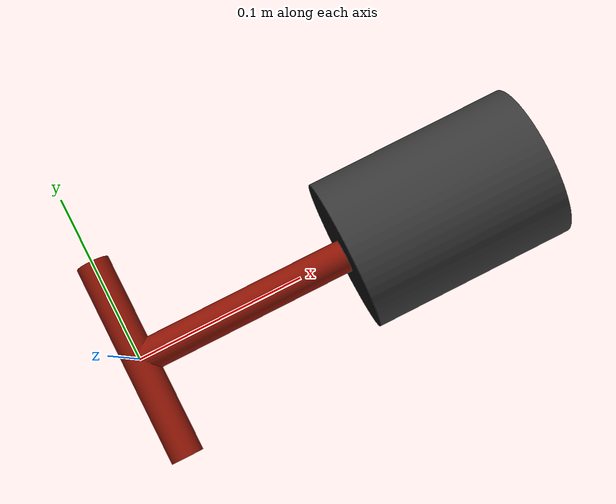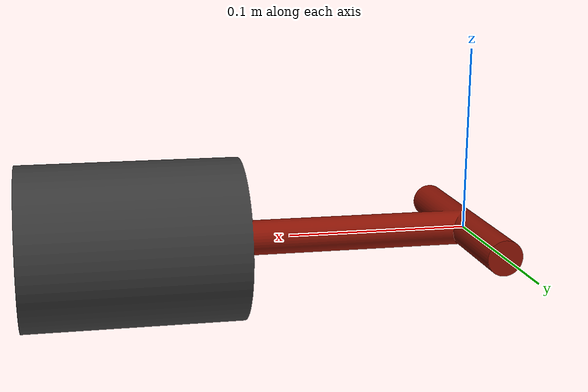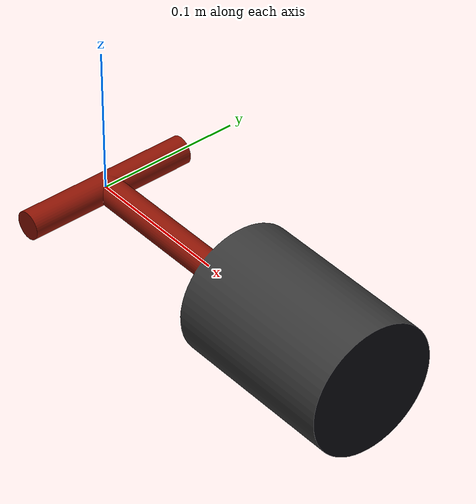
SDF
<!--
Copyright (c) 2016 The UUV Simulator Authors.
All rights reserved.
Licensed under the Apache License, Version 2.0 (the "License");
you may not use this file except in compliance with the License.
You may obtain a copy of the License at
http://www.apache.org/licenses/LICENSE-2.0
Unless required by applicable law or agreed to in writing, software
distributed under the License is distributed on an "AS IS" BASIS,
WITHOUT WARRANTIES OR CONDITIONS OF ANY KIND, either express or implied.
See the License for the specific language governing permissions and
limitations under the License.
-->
<?xml version="1.0" ?>
<sdf version="1.5">
  <model name="torque_tool">
    <link name="torque_tool">
      <pose>0 0 0 0 0 0</pose>
      <inertial>
        <mass>3.0</mass>
        <inertia>
          <ixx>0.005559567289</ixx>
          <iyy>0.018279629789</iyy>
          <izz>0.0199200625</izz>
          <ixy>0</ixy>
          <ixz>0</ixz>
          <iyz>0</iyz>
        </inertia>
        <pose>0.12775 0 0 0 0 0</pose>
      </inertial>

      <collision name="torque_tool_collision">
        <geometry>
          <mesh>
            <uri>model://torque_tool/meshes/TorqueTool.dae</uri>
          </mesh>
        </geometry>
      </collision>

      <visual name="torque_tool_visual">
        <geometry>
          <mesh>
            <uri>model://torque_tool/meshes/TorqueTool.dae</uri>
          </mesh>
        </geometry>
      </visual>
    </link>
  </model>
</sdf>
